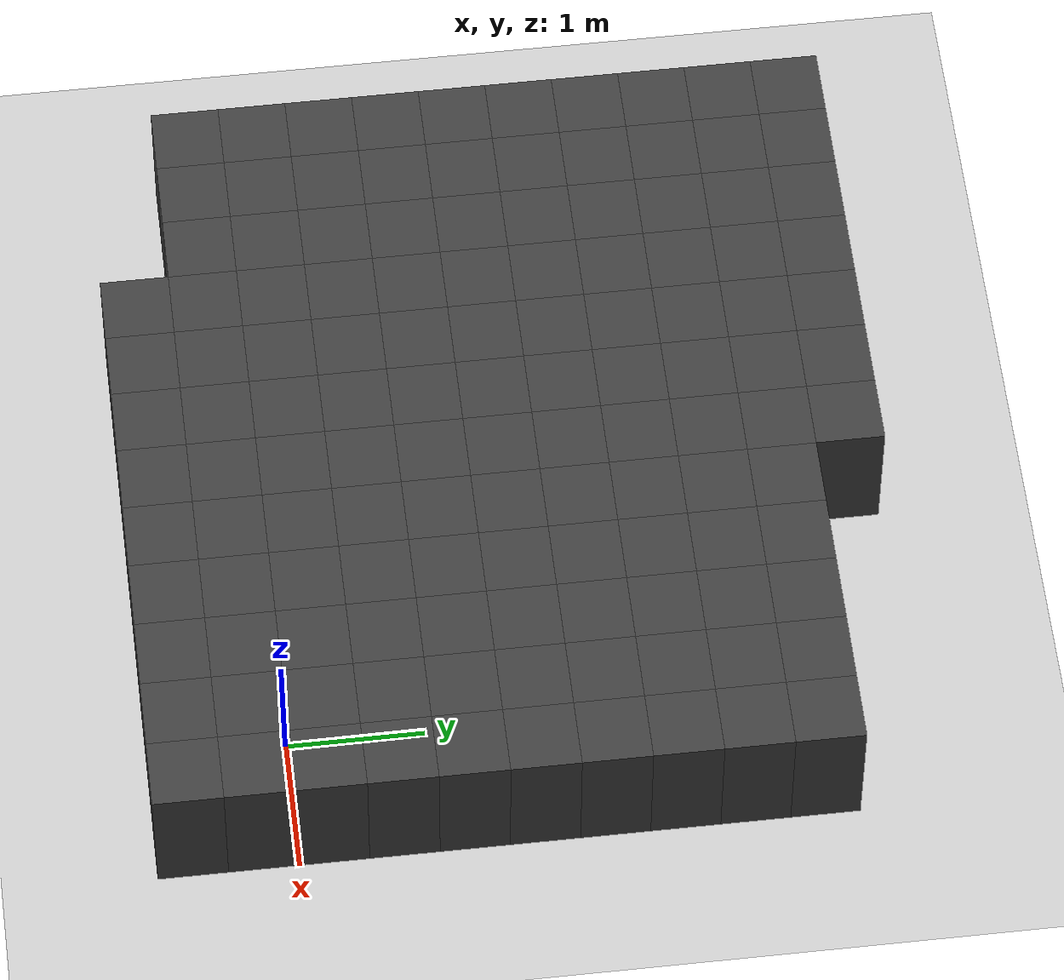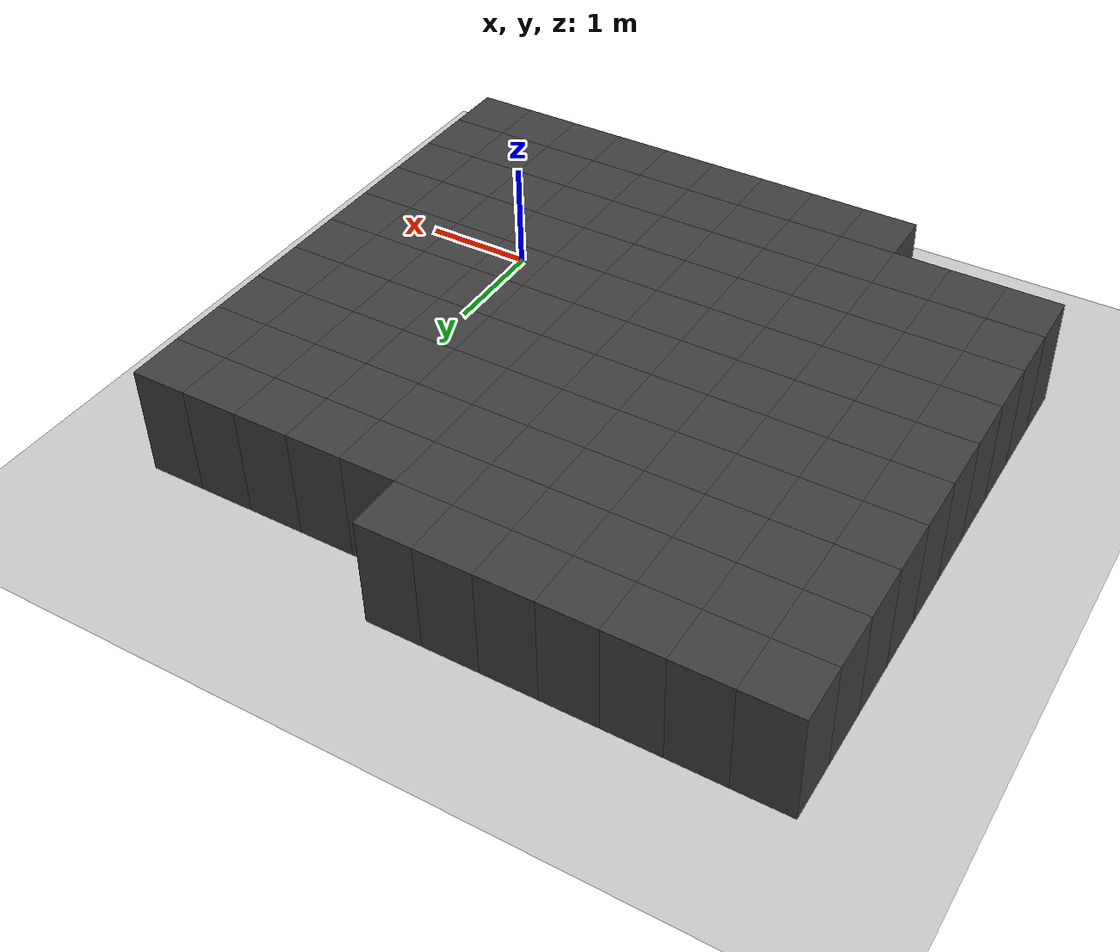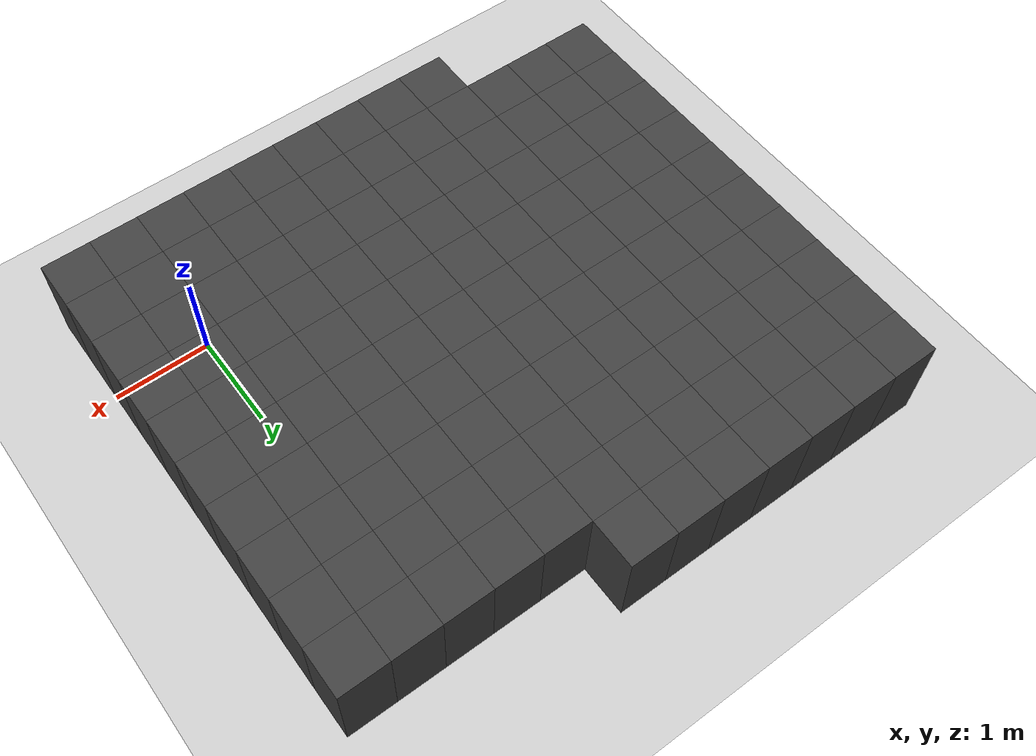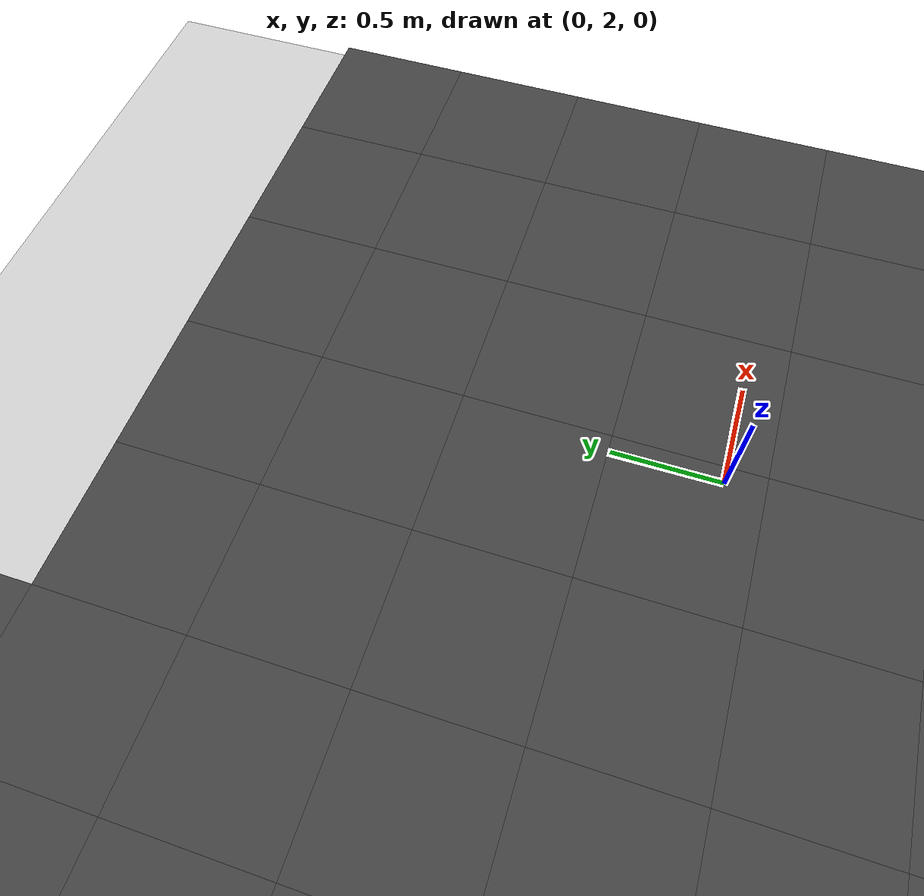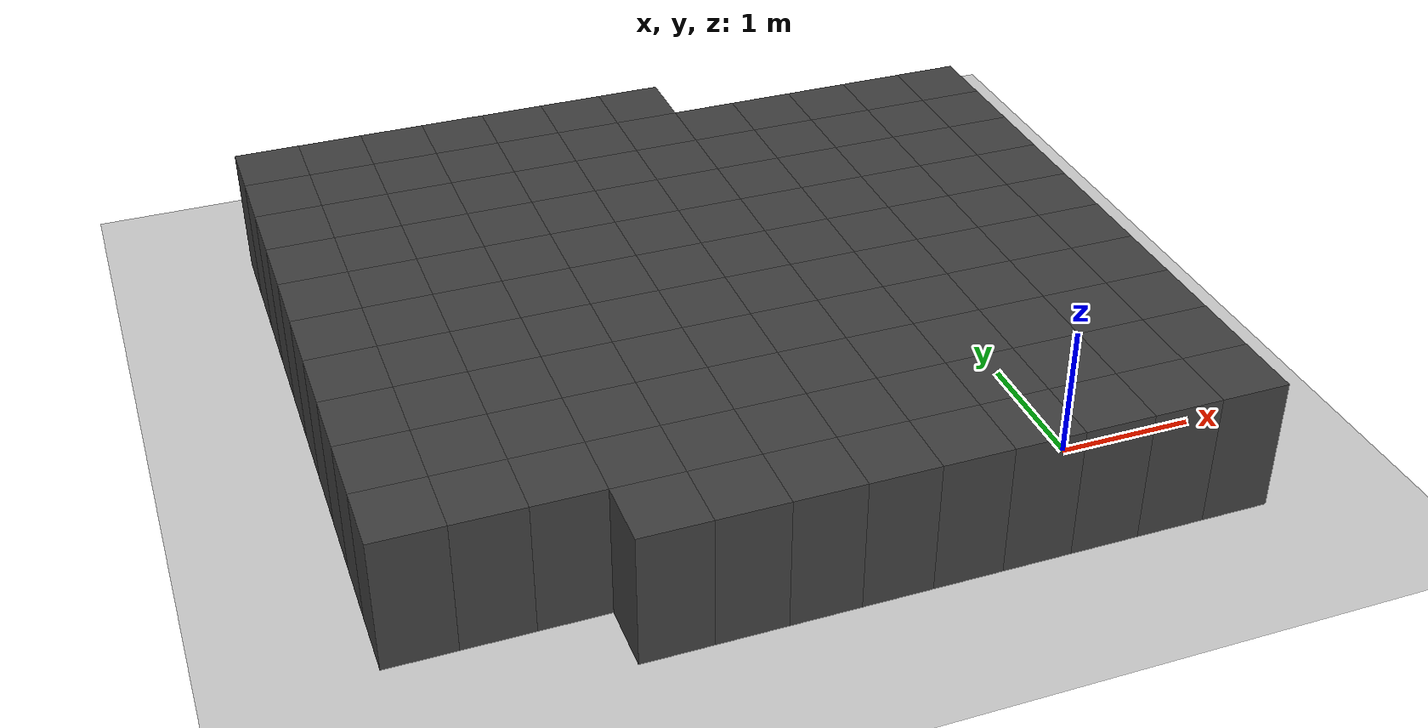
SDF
<sdf version="1.7">
 <world name="map_14668">
  <model name="ground_plane">
   <static>true</static>
   <link name="link">
    <collision name="collision">
     <geometry><plane><normal>0 0 1</normal><size>200 200</size></plane></geometry>
    </collision>
    <visual name="visual">
     <geometry><plane><normal>0 0 1</normal><size>200 200</size></plane></geometry>
     <material><ambient>0.8 0.8 0.8 1</ambient><diffuse>0.8 0.8 0.8 1</diffuse></material>
    </visual>
   </link>
  </model>
  <model name="maze_environment">
   <static>true</static>
   <link name="wall_577">
    <pose>-4.750 4.250 0.500 0 0 0</pose>
    <collision name="col"><geometry><box><size>0.5 0.5 1.0</size></box></geometry></collision>
    <visual name="vis">
     <geometry><box><size>0.5 0.5 1.0</size></box></geometry>
     <material><ambient>0.15 0.15 0.15 1</ambient><diffuse>0.25 0.25 0.25 1</diffuse></material>
    </visual>
   </link>
   <link name="wall_578">
    <pose>-4.250 4.250 0.500 0 0 0</pose>
    <collision name="col"><geometry><box><size>0.5 0.5 1.0</size></box></geometry></collision>
    <visual name="vis">
     <geometry><box><size>0.5 0.5 1.0</size></box></geometry>
     <material><ambient>0.15 0.15 0.15 1</ambient><diffuse>0.25 0.25 0.25 1</diffuse></material>
    </visual>
   </link>
   <link name="wall_579">
    <pose>-3.750 4.250 0.500 0 0 0</pose>
    <collision name="col"><geometry><box><size>0.5 0.5 1.0</size></box></geometry></collision>
    <visual name="vis">
     <geometry><box><size>0.5 0.5 1.0</size></box></geometry>
     <material><ambient>0.15 0.15 0.15 1</ambient><diffuse>0.25 0.25 0.25 1</diffuse></material>
    </visual>
   </link>
   <link name="wall_580">
    <pose>-3.250 4.250 0.500 0 0 0</pose>
    <collision name="col"><geometry><box><size>0.5 0.5 1.0</size></box></geometry></collision>
    <visual name="vis">
     <geometry><box><size>0.5 0.5 1.0</size></box></geometry>
     <material><ambient>0.15 0.15 0.15 1</ambient><diffuse>0.25 0.25 0.25 1</diffuse></material>
    </visual>
   </link>
   <link name="wall_581">
    <pose>-2.750 4.250 0.500 0 0 0</pose>
    <collision name="col"><geometry><box><size>0.5 0.5 1.0</size></box></geometry></collision>
    <visual name="vis">
     <geometry><box><size>0.5 0.5 1.0</size></box></geometry>
     <material><ambient>0.15 0.15 0.15 1</ambient><diffuse>0.25 0.25 0.25 1</diffuse></material>
    </visual>
   </link>
   <link name="wall_582">
    <pose>-2.250 4.250 0.500 0 0 0</pose>
    <collision name="col"><geometry><box><size>0.5 0.5 1.0</size></box></geometry></collision>
    <visual name="vis">
     <geometry><box><size>0.5 0.5 1.0</size></box></geometry>
     <material><ambient>0.15 0.15 0.15 1</ambient><diffuse>0.25 0.25 0.25 1</diffuse></material>
    </visual>
   </link>
   <link name="wall_583">
    <pose>-1.750 4.250 0.500 0 0 0</pose>
    <collision name="col"><geometry><box><size>0.5 0.5 1.0</size></box></geometry></collision>
    <visual name="vis">
     <geometry><box><size>0.5 0.5 1.0</size></box></geometry>
     <material><ambient>0.15 0.15 0.15 1</ambient><diffuse>0.25 0.25 0.25 1</diffuse></material>
    </visual>
   </link>
   <link name="wall_611">
    <pose>-4.750 3.750 0.500 0 0 0</pose>
    <collision name="col"><geometry><box><size>0.5 0.5 1.0</size></box></geometry></collision>
    <visual name="vis">
     <geometry><box><size>0.5 0.5 1.0</size></box></geometry>
     <material><ambient>0.15 0.15 0.15 1</ambient><diffuse>0.25 0.25 0.25 1</diffuse></material>
    </visual>
   </link>
   <link name="wall_612">
    <pose>-4.250 3.750 0.500 0 0 0</pose>
    <collision name="col"><geometry><box><size>0.5 0.5 1.0</size></box></geometry></collision>
    <visual name="vis">
     <geometry><box><size>0.5 0.5 1.0</size></box></geometry>
     <material><ambient>0.15 0.15 0.15 1</ambient><diffuse>0.25 0.25 0.25 1</diffuse></material>
    </visual>
   </link>
   <link name="wall_613">
    <pose>-3.750 3.750 0.500 0 0 0</pose>
    <collision name="col"><geometry><box><size>0.5 0.5 1.0</size></box></geometry></collision>
    <visual name="vis">
     <geometry><box><size>0.5 0.5 1.0</size></box></geometry>
     <material><ambient>0.15 0.15 0.15 1</ambient><diffuse>0.25 0.25 0.25 1</diffuse></material>
    </visual>
   </link>
   <link name="wall_614">
    <pose>-3.250 3.750 0.500 0 0 0</pose>
    <collision name="col"><geometry><box><size>0.5 0.5 1.0</size></box></geometry></collision>
    <visual name="vis">
     <geometry><box><size>0.5 0.5 1.0</size></box></geometry>
     <material><ambient>0.15 0.15 0.15 1</ambient><diffuse>0.25 0.25 0.25 1</diffuse></material>
    </visual>
   </link>
   <link name="wall_615">
    <pose>-2.750 3.750 0.500 0 0 0</pose>
    <collision name="col"><geometry><box><size>0.5 0.5 1.0</size></box></geometry></collision>
    <visual name="vis">
     <geometry><box><size>0.5 0.5 1.0</size></box></geometry>
     <material><ambient>0.15 0.15 0.15 1</ambient><diffuse>0.25 0.25 0.25 1</diffuse></material>
    </visual>
   </link>
   <link name="wall_616">
    <pose>-2.250 3.750 0.500 0 0 0</pose>
    <collision name="col"><geometry><box><size>0.5 0.5 1.0</size></box></geometry></collision>
    <visual name="vis">
     <geometry><box><size>0.5 0.5 1.0</size></box></geometry>
     <material><ambient>0.15 0.15 0.15 1</ambient><diffuse>0.25 0.25 0.25 1</diffuse></material>
    </visual>
   </link>
   <link name="wall_617">
    <pose>-1.750 3.750 0.500 0 0 0</pose>
    <collision name="col"><geometry><box><size>0.5 0.5 1.0</size></box></geometry></collision>
    <visual name="vis">
     <geometry><box><size>0.5 0.5 1.0</size></box></geometry>
     <material><ambient>0.15 0.15 0.15 1</ambient><diffuse>0.25 0.25 0.25 1</diffuse></material>
    </visual>
   </link>
   <link name="wall_618">
    <pose>-1.250 3.750 0.500 0 0 0</pose>
    <collision name="col"><geometry><box><size>0.5 0.5 1.0</size></box></geometry></collision>
    <visual name="vis">
     <geometry><box><size>0.5 0.5 1.0</size></box></geometry>
     <material><ambient>0.15 0.15 0.15 1</ambient><diffuse>0.25 0.25 0.25 1</diffuse></material>
    </visual>
   </link>
   <link name="wall_619">
    <pose>-0.750 3.750 0.500 0 0 0</pose>
    <collision name="col"><geometry><box><size>0.5 0.5 1.0</size></box></geometry></collision>
    <visual name="vis">
     <geometry><box><size>0.5 0.5 1.0</size></box></geometry>
     <material><ambient>0.15 0.15 0.15 1</ambient><diffuse>0.25 0.25 0.25 1</diffuse></material>
    </visual>
   </link>
   <link name="wall_620">
    <pose>-0.250 3.750 0.500 0 0 0</pose>
    <collision name="col"><geometry><box><size>0.5 0.5 1.0</size></box></geometry></collision>
    <visual name="vis">
     <geometry><box><size>0.5 0.5 1.0</size></box></geometry>
     <material><ambient>0.15 0.15 0.15 1</ambient><diffuse>0.25 0.25 0.25 1</diffuse></material>
    </visual>
   </link>
   <link name="wall_621">
    <pose>0.250 3.750 0.500 0 0 0</pose>
    <collision name="col"><geometry><box><size>0.5 0.5 1.0</size></box></geometry></collision>
    <visual name="vis">
     <geometry><box><size>0.5 0.5 1.0</size></box></geometry>
     <material><ambient>0.15 0.15 0.15 1</ambient><diffuse>0.25 0.25 0.25 1</diffuse></material>
    </visual>
   </link>
   <link name="wall_622">
    <pose>0.750 3.750 0.500 0 0 0</pose>
    <collision name="col"><geometry><box><size>0.5 0.5 1.0</size></box></geometry></collision>
    <visual name="vis">
     <geometry><box><size>0.5 0.5 1.0</size></box></geometry>
     <material><ambient>0.15 0.15 0.15 1</ambient><diffuse>0.25 0.25 0.25 1</diffuse></material>
    </visual>
   </link>
   <link name="wall_653">
    <pose>-4.750 3.250 0.500 0 0 0</pose>
    <collision name="col"><geometry><box><size>0.5 0.5 1.0</size></box></geometry></collision>
    <visual name="vis">
     <geometry><box><size>0.5 0.5 1.0</size></box></geometry>
     <material><ambient>0.15 0.15 0.15 1</ambient><diffuse>0.25 0.25 0.25 1</diffuse></material>
    </visual>
   </link>
   <link name="wall_654">
    <pose>-4.250 3.250 0.500 0 0 0</pose>
    <collision name="col"><geometry><box><size>0.5 0.5 1.0</size></box></geometry></collision>
    <visual name="vis">
     <geometry><box><size>0.5 0.5 1.0</size></box></geometry>
     <material><ambient>0.15 0.15 0.15 1</ambient><diffuse>0.25 0.25 0.25 1</diffuse></material>
    </visual>
   </link>
   <link name="wall_655">
    <pose>-3.750 3.250 0.500 0 0 0</pose>
    <collision name="col"><geometry><box><size>0.5 0.5 1.0</size></box></geometry></collision>
    <visual name="vis">
     <geometry><box><size>0.5 0.5 1.0</size></box></geometry>
     <material><ambient>0.15 0.15 0.15 1</ambient><diffuse>0.25 0.25 0.25 1</diffuse></material>
    </visual>
   </link>
   <link name="wall_656">
    <pose>-3.250 3.250 0.500 0 0 0</pose>
    <collision name="col"><geometry><box><size>0.5 0.5 1.0</size></box></geometry></collision>
    <visual name="vis">
     <geometry><box><size>0.5 0.5 1.0</size></box></geometry>
     <material><ambient>0.15 0.15 0.15 1</ambient><diffuse>0.25 0.25 0.25 1</diffuse></material>
    </visual>
   </link>
   <link name="wall_657">
    <pose>-2.750 3.250 0.500 0 0 0</pose>
    <collision name="col"><geometry><box><size>0.5 0.5 1.0</size></box></geometry></collision>
    <visual name="vis">
     <geometry><box><size>0.5 0.5 1.0</size></box></geometry>
     <material><ambient>0.15 0.15 0.15 1</ambient><diffuse>0.25 0.25 0.25 1</diffuse></material>
    </visual>
   </link>
   <link name="wall_658">
    <pose>-2.250 3.250 0.500 0 0 0</pose>
    <collision name="col"><geometry><box><size>0.5 0.5 1.0</size></box></geometry></collision>
    <visual name="vis">
     <geometry><box><size>0.5 0.5 1.0</size></box></geometry>
     <material><ambient>0.15 0.15 0.15 1</ambient><diffuse>0.25 0.25 0.25 1</diffuse></material>
    </visual>
   </link>
   <link name="wall_659">
    <pose>-1.750 3.250 0.500 0 0 0</pose>
    <collision name="col"><geometry><box><size>0.5 0.5 1.0</size></box></geometry></collision>
    <visual name="vis">
     <geometry><box><size>0.5 0.5 1.0</size></box></geometry>
     <material><ambient>0.15 0.15 0.15 1</ambient><diffuse>0.25 0.25 0.25 1</diffuse></material>
    </visual>
   </link>
   <link name="wall_660">
    <pose>-1.250 3.250 0.500 0 0 0</pose>
    <collision name="col"><geometry><box><size>0.5 0.5 1.0</size></box></geometry></collision>
    <visual name="vis">
     <geometry><box><size>0.5 0.5 1.0</size></box></geometry>
     <material><ambient>0.15 0.15 0.15 1</ambient><diffuse>0.25 0.25 0.25 1</diffuse></material>
    </visual>
   </link>
   <link name="wall_661">
    <pose>-0.750 3.250 0.500 0 0 0</pose>
    <collision name="col"><geometry><box><size>0.5 0.5 1.0</size></box></geometry></collision>
    <visual name="vis">
     <geometry><box><size>0.5 0.5 1.0</size></box></geometry>
     <material><ambient>0.15 0.15 0.15 1</ambient><diffuse>0.25 0.25 0.25 1</diffuse></material>
    </visual>
   </link>
   <link name="wall_662">
    <pose>-0.250 3.250 0.500 0 0 0</pose>
    <collision name="col"><geometry><box><size>0.5 0.5 1.0</size></box></geometry></collision>
    <visual name="vis">
     <geometry><box><size>0.5 0.5 1.0</size></box></geometry>
     <material><ambient>0.15 0.15 0.15 1</ambient><diffuse>0.25 0.25 0.25 1</diffuse></material>
    </visual>
   </link>
   <link name="wall_663">
    <pose>0.250 3.250 0.500 0 0 0</pose>
    <collision name="col"><geometry><box><size>0.5 0.5 1.0</size></box></geometry></collision>
    <visual name="vis">
     <geometry><box><size>0.5 0.5 1.0</size></box></geometry>
     <material><ambient>0.15 0.15 0.15 1</ambient><diffuse>0.25 0.25 0.25 1</diffuse></material>
    </visual>
   </link>
   <link name="wall_664">
    <pose>0.750 3.250 0.500 0 0 0</pose>
    <collision name="col"><geometry><box><size>0.5 0.5 1.0</size></box></geometry></collision>
    <visual name="vis">
     <geometry><box><size>0.5 0.5 1.0</size></box></geometry>
     <material><ambient>0.15 0.15 0.15 1</ambient><diffuse>0.25 0.25 0.25 1</diffuse></material>
    </visual>
   </link>
   <link name="wall_689">
    <pose>-4.750 2.750 0.500 0 0 0</pose>
    <collision name="col"><geometry><box><size>0.5 0.5 1.0</size></box></geometry></collision>
    <visual name="vis">
     <geometry><box><size>0.5 0.5 1.0</size></box></geometry>
     <material><ambient>0.15 0.15 0.15 1</ambient><diffuse>0.25 0.25 0.25 1</diffuse></material>
    </visual>
   </link>
   <link name="wall_690">
    <pose>-4.250 2.750 0.500 0 0 0</pose>
    <collision name="col"><geometry><box><size>0.5 0.5 1.0</size></box></geometry></collision>
    <visual name="vis">
     <geometry><box><size>0.5 0.5 1.0</size></box></geometry>
     <material><ambient>0.15 0.15 0.15 1</ambient><diffuse>0.25 0.25 0.25 1</diffuse></material>
    </visual>
   </link>
   <link name="wall_691">
    <pose>-3.750 2.750 0.500 0 0 0</pose>
    <collision name="col"><geometry><box><size>0.5 0.5 1.0</size></box></geometry></collision>
    <visual name="vis">
     <geometry><box><size>0.5 0.5 1.0</size></box></geometry>
     <material><ambient>0.15 0.15 0.15 1</ambient><diffuse>0.25 0.25 0.25 1</diffuse></material>
    </visual>
   </link>
   <link name="wall_692">
    <pose>-3.250 2.750 0.500 0 0 0</pose>
    <collision name="col"><geometry><box><size>0.5 0.5 1.0</size></box></geometry></collision>
    <visual name="vis">
     <geometry><box><size>0.5 0.5 1.0</size></box></geometry>
     <material><ambient>0.15 0.15 0.15 1</ambient><diffuse>0.25 0.25 0.25 1</diffuse></material>
    </visual>
   </link>
   <link name="wall_693">
    <pose>-2.750 2.750 0.500 0 0 0</pose>
    <collision name="col"><geometry><box><size>0.5 0.5 1.0</size></box></geometry></collision>
    <visual name="vis">
     <geometry><box><size>0.5 0.5 1.0</size></box></geometry>
     <material><ambient>0.15 0.15 0.15 1</ambient><diffuse>0.25 0.25 0.25 1</diffuse></material>
    </visual>
   </link>
   <link name="wall_694">
    <pose>-2.250 2.750 0.500 0 0 0</pose>
    <collision name="col"><geometry><box><size>0.5 0.5 1.0</size></box></geometry></collision>
    <visual name="vis">
     <geometry><box><size>0.5 0.5 1.0</size></box></geometry>
     <material><ambient>0.15 0.15 0.15 1</ambient><diffuse>0.25 0.25 0.25 1</diffuse></material>
    </visual>
   </link>
   <link name="wall_695">
    <pose>-1.750 2.750 0.500 0 0 0</pose>
    <collision name="col"><geometry><box><size>0.5 0.5 1.0</size></box></geometry></collision>
    <visual name="vis">
     <geometry><box><size>0.5 0.5 1.0</size></box></geometry>
     <material><ambient>0.15 0.15 0.15 1</ambient><diffuse>0.25 0.25 0.25 1</diffuse></material>
    </visual>
   </link>
   <link name="wall_696">
    <pose>-1.250 2.750 0.500 0 0 0</pose>
    <collision name="col"><geometry><box><size>0.5 0.5 1.0</size></box></geometry></collision>
    <visual name="vis">
     <geometry><box><size>0.5 0.5 1.0</size></box></geometry>
     <material><ambient>0.15 0.15 0.15 1</ambient><diffuse>0.25 0.25 0.25 1</diffuse></material>
    </visual>
   </link>
   <link name="wall_697">
    <pose>-0.750 2.750 0.500 0 0 0</pose>
    <collision name="col"><geometry><box><size>0.5 0.5 1.0</size></box></geometry></collision>
    <visual name="vis">
     <geometry><box><size>0.5 0.5 1.0</size></box></geometry>
     <material><ambient>0.15 0.15 0.15 1</ambient><diffuse>0.25 0.25 0.25 1</diffuse></material>
    </visual>
   </link>
   <link name="wall_698">
    <pose>-0.250 2.750 0.500 0 0 0</pose>
    <collision name="col"><geometry><box><size>0.5 0.5 1.0</size></box></geometry></collision>
    <visual name="vis">
     <geometry><box><size>0.5 0.5 1.0</size></box></geometry>
     <material><ambient>0.15 0.15 0.15 1</ambient><diffuse>0.25 0.25 0.25 1</diffuse></material>
    </visual>
   </link>
   <link name="wall_699">
    <pose>0.250 2.750 0.500 0 0 0</pose>
    <collision name="col"><geometry><box><size>0.5 0.5 1.0</size></box></geometry></collision>
    <visual name="vis">
     <geometry><box><size>0.5 0.5 1.0</size></box></geometry>
     <material><ambient>0.15 0.15 0.15 1</ambient><diffuse>0.25 0.25 0.25 1</diffuse></material>
    </visual>
   </link>
   <link name="wall_700">
    <pose>0.750 2.750 0.500 0 0 0</pose>
    <collision name="col"><geometry><box><size>0.5 0.5 1.0</size></box></geometry></collision>
    <visual name="vis">
     <geometry><box><size>0.5 0.5 1.0</size></box></geometry>
     <material><ambient>0.15 0.15 0.15 1</ambient><diffuse>0.25 0.25 0.25 1</diffuse></material>
    </visual>
   </link>
   <link name="wall_732">
    <pose>-4.750 2.250 0.500 0 0 0</pose>
    <collision name="col"><geometry><box><size>0.5 0.5 1.0</size></box></geometry></collision>
    <visual name="vis">
     <geometry><box><size>0.5 0.5 1.0</size></box></geometry>
     <material><ambient>0.15 0.15 0.15 1</ambient><diffuse>0.25 0.25 0.25 1</diffuse></material>
    </visual>
   </link>
   <link name="wall_733">
    <pose>-4.250 2.250 0.500 0 0 0</pose>
    <collision name="col"><geometry><box><size>0.5 0.5 1.0</size></box></geometry></collision>
    <visual name="vis">
     <geometry><box><size>0.5 0.5 1.0</size></box></geometry>
     <material><ambient>0.15 0.15 0.15 1</ambient><diffuse>0.25 0.25 0.25 1</diffuse></material>
    </visual>
   </link>
   <link name="wall_734">
    <pose>-3.750 2.250 0.500 0 0 0</pose>
    <collision name="col"><geometry><box><size>0.5 0.5 1.0</size></box></geometry></collision>
    <visual name="vis">
     <geometry><box><size>0.5 0.5 1.0</size></box></geometry>
     <material><ambient>0.15 0.15 0.15 1</ambient><diffuse>0.25 0.25 0.25 1</diffuse></material>
    </visual>
   </link>
   <link name="wall_735">
    <pose>-3.250 2.250 0.500 0 0 0</pose>
    <collision name="col"><geometry><box><size>0.5 0.5 1.0</size></box></geometry></collision>
    <visual name="vis">
     <geometry><box><size>0.5 0.5 1.0</size></box></geometry>
     <material><ambient>0.15 0.15 0.15 1</ambient><diffuse>0.25 0.25 0.25 1</diffuse></material>
    </visual>
   </link>
   <link name="wall_736">
    <pose>-2.750 2.250 0.500 0 0 0</pose>
    <collision name="col"><geometry><box><size>0.5 0.5 1.0</size></box></geometry></collision>
    <visual name="vis">
     <geometry><box><size>0.5 0.5 1.0</size></box></geometry>
     <material><ambient>0.15 0.15 0.15 1</ambient><diffuse>0.25 0.25 0.25 1</diffuse></material>
    </visual>
   </link>
   <link name="wall_737">
    <pose>-2.250 2.250 0.500 0 0 0</pose>
    <collision name="col"><geometry><box><size>0.5 0.5 1.0</size></box></geometry></collision>
    <visual name="vis">
     <geometry><box><size>0.5 0.5 1.0</size></box></geometry>
     <material><ambient>0.15 0.15 0.15 1</ambient><diffuse>0.25 0.25 0.25 1</diffuse></material>
    </visual>
   </link>
   <link name="wall_738">
    <pose>-1.750 2.250 0.500 0 0 0</pose>
    <collision name="col"><geometry><box><size>0.5 0.5 1.0</size></box></geometry></collision>
    <visual name="vis">
     <geometry><box><size>0.5 0.5 1.0</size></box></geometry>
     <material><ambient>0.15 0.15 0.15 1</ambient><diffuse>0.25 0.25 0.25 1</diffuse></material>
    </visual>
   </link>
   <link name="wall_739">
    <pose>-1.250 2.250 0.500 0 0 0</pose>
    <collision name="col"><geometry><box><size>0.5 0.5 1.0</size></box></geometry></collision>
    <visual name="vis">
     <geometry><box><size>0.5 0.5 1.0</size></box></geometry>
     <material><ambient>0.15 0.15 0.15 1</ambient><diffuse>0.25 0.25 0.25 1</diffuse></material>
    </visual>
   </link>
   <link name="wall_740">
    <pose>-0.750 2.250 0.500 0 0 0</pose>
    <collision name="col"><geometry><box><size>0.5 0.5 1.0</size></box></geometry></collision>
    <visual name="vis">
     <geometry><box><size>0.5 0.5 1.0</size></box></geometry>
     <material><ambient>0.15 0.15 0.15 1</ambient><diffuse>0.25 0.25 0.25 1</diffuse></material>
    </visual>
   </link>
   <link name="wall_741">
    <pose>-0.250 2.250 0.500 0 0 0</pose>
    <collision name="col"><geometry><box><size>0.5 0.5 1.0</size></box></geometry></collision>
    <visual name="vis">
     <geometry><box><size>0.5 0.5 1.0</size></box></geometry>
     <material><ambient>0.15 0.15 0.15 1</ambient><diffuse>0.25 0.25 0.25 1</diffuse></material>
    </visual>
   </link>
   <link name="wall_742">
    <pose>0.250 2.250 0.500 0 0 0</pose>
    <collision name="col"><geometry><box><size>0.5 0.5 1.0</size></box></geometry></collision>
    <visual name="vis">
     <geometry><box><size>0.5 0.5 1.0</size></box></geometry>
     <material><ambient>0.15 0.15 0.15 1</ambient><diffuse>0.25 0.25 0.25 1</diffuse></material>
    </visual>
   </link>
   <link name="wall_743">
    <pose>0.750 2.250 0.500 0 0 0</pose>
    <collision name="col"><geometry><box><size>0.5 0.5 1.0</size></box></geometry></collision>
    <visual name="vis">
     <geometry><box><size>0.5 0.5 1.0</size></box></geometry>
     <material><ambient>0.15 0.15 0.15 1</ambient><diffuse>0.25 0.25 0.25 1</diffuse></material>
    </visual>
   </link>
   <link name="wall_775">
    <pose>-4.750 1.750 0.500 0 0 0</pose>
    <collision name="col"><geometry><box><size>0.5 0.5 1.0</size></box></geometry></collision>
    <visual name="vis">
     <geometry><box><size>0.5 0.5 1.0</size></box></geometry>
     <material><ambient>0.15 0.15 0.15 1</ambient><diffuse>0.25 0.25 0.25 1</diffuse></material>
    </visual>
   </link>
   <link name="wall_776">
    <pose>-4.250 1.750 0.500 0 0 0</pose>
    <collision name="col"><geometry><box><size>0.5 0.5 1.0</size></box></geometry></collision>
    <visual name="vis">
     <geometry><box><size>0.5 0.5 1.0</size></box></geometry>
     <material><ambient>0.15 0.15 0.15 1</ambient><diffuse>0.25 0.25 0.25 1</diffuse></material>
    </visual>
   </link>
   <link name="wall_777">
    <pose>-3.750 1.750 0.500 0 0 0</pose>
    <collision name="col"><geometry><box><size>0.5 0.5 1.0</size></box></geometry></collision>
    <visual name="vis">
     <geometry><box><size>0.5 0.5 1.0</size></box></geometry>
     <material><ambient>0.15 0.15 0.15 1</ambient><diffuse>0.25 0.25 0.25 1</diffuse></material>
    </visual>
   </link>
   <link name="wall_778">
    <pose>-3.250 1.750 0.500 0 0 0</pose>
    <collision name="col"><geometry><box><size>0.5 0.5 1.0</size></box></geometry></collision>
    <visual name="vis">
     <geometry><box><size>0.5 0.5 1.0</size></box></geometry>
     <material><ambient>0.15 0.15 0.15 1</ambient><diffuse>0.25 0.25 0.25 1</diffuse></material>
    </visual>
   </link>
   <link name="wall_779">
    <pose>-2.750 1.750 0.500 0 0 0</pose>
    <collision name="col"><geometry><box><size>0.5 0.5 1.0</size></box></geometry></collision>
    <visual name="vis">
     <geometry><box><size>0.5 0.5 1.0</size></box></geometry>
     <material><ambient>0.15 0.15 0.15 1</ambient><diffuse>0.25 0.25 0.25 1</diffuse></material>
    </visual>
   </link>
   <link name="wall_780">
    <pose>-2.250 1.750 0.500 0 0 0</pose>
    <collision name="col"><geometry><box><size>0.5 0.5 1.0</size></box></geometry></collision>
    <visual name="vis">
     <geometry><box><size>0.5 0.5 1.0</size></box></geometry>
     <material><ambient>0.15 0.15 0.15 1</ambient><diffuse>0.25 0.25 0.25 1</diffuse></material>
    </visual>
   </link>
   <link name="wall_781">
    <pose>-1.750 1.750 0.500 0 0 0</pose>
    <collision name="col"><geometry><box><size>0.5 0.5 1.0</size></box></geometry></collision>
    <visual name="vis">
     <geometry><box><size>0.5 0.5 1.0</size></box></geometry>
     <material><ambient>0.15 0.15 0.15 1</ambient><diffuse>0.25 0.25 0.25 1</diffuse></material>
    </visual>
   </link>
   <link name="wall_782">
    <pose>-1.250 1.750 0.500 0 0 0</pose>
    <collision name="col"><geometry><box><size>0.5 0.5 1.0</size></box></geometry></collision>
    <visual name="vis">
     <geometry><box><size>0.5 0.5 1.0</size></box></geometry>
     <material><ambient>0.15 0.15 0.15 1</ambient><diffuse>0.25 0.25 0.25 1</diffuse></material>
    </visual>
   </link>
   <link name="wall_783">
    <pose>-0.750 1.750 0.500 0 0 0</pose>
    <collision name="col"><geometry><box><size>0.5 0.5 1.0</size></box></geometry></collision>
    <visual name="vis">
     <geometry><box><size>0.5 0.5 1.0</size></box></geometry>
     <material><ambient>0.15 0.15 0.15 1</ambient><diffuse>0.25 0.25 0.25 1</diffuse></material>
    </visual>
   </link>
   <link name="wall_784">
    <pose>-0.250 1.750 0.500 0 0 0</pose>
    <collision name="col"><geometry><box><size>0.5 0.5 1.0</size></box></geometry></collision>
    <visual name="vis">
     <geometry><box><size>0.5 0.5 1.0</size></box></geometry>
     <material><ambient>0.15 0.15 0.15 1</ambient><diffuse>0.25 0.25 0.25 1</diffuse></material>
    </visual>
   </link>
   <link name="wall_785">
    <pose>0.250 1.750 0.500 0 0 0</pose>
    <collision name="col"><geometry><box><size>0.5 0.5 1.0</size></box></geometry></collision>
    <visual name="vis">
     <geometry><box><size>0.5 0.5 1.0</size></box></geometry>
     <material><ambient>0.15 0.15 0.15 1</ambient><diffuse>0.25 0.25 0.25 1</diffuse></material>
    </visual>
   </link>
   <link name="wall_786">
    <pose>0.750 1.750 0.500 0 0 0</pose>
    <collision name="col"><geometry><box><size>0.5 0.5 1.0</size></box></geometry></collision>
    <visual name="vis">
     <geometry><box><size>0.5 0.5 1.0</size></box></geometry>
     <material><ambient>0.15 0.15 0.15 1</ambient><diffuse>0.25 0.25 0.25 1</diffuse></material>
    </visual>
   </link>
   <link name="wall_818">
    <pose>-4.750 1.250 0.500 0 0 0</pose>
    <collision name="col"><geometry><box><size>0.5 0.5 1.0</size></box></geometry></collision>
    <visual name="vis">
     <geometry><box><size>0.5 0.5 1.0</size></box></geometry>
     <material><ambient>0.15 0.15 0.15 1</ambient><diffuse>0.25 0.25 0.25 1</diffuse></material>
    </visual>
   </link>
   <link name="wall_819">
    <pose>-4.250 1.250 0.500 0 0 0</pose>
    <collision name="col"><geometry><box><size>0.5 0.5 1.0</size></box></geometry></collision>
    <visual name="vis">
     <geometry><box><size>0.5 0.5 1.0</size></box></geometry>
     <material><ambient>0.15 0.15 0.15 1</ambient><diffuse>0.25 0.25 0.25 1</diffuse></material>
    </visual>
   </link>
   <link name="wall_820">
    <pose>-3.750 1.250 0.500 0 0 0</pose>
    <collision name="col"><geometry><box><size>0.5 0.5 1.0</size></box></geometry></collision>
    <visual name="vis">
     <geometry><box><size>0.5 0.5 1.0</size></box></geometry>
     <material><ambient>0.15 0.15 0.15 1</ambient><diffuse>0.25 0.25 0.25 1</diffuse></material>
    </visual>
   </link>
   <link name="wall_821">
    <pose>-3.250 1.250 0.500 0 0 0</pose>
    <collision name="col"><geometry><box><size>0.5 0.5 1.0</size></box></geometry></collision>
    <visual name="vis">
     <geometry><box><size>0.5 0.5 1.0</size></box></geometry>
     <material><ambient>0.15 0.15 0.15 1</ambient><diffuse>0.25 0.25 0.25 1</diffuse></material>
    </visual>
   </link>
   <link name="wall_822">
    <pose>-2.750 1.250 0.500 0 0 0</pose>
    <collision name="col"><geometry><box><size>0.5 0.5 1.0</size></box></geometry></collision>
    <visual name="vis">
     <geometry><box><size>0.5 0.5 1.0</size></box></geometry>
     <material><ambient>0.15 0.15 0.15 1</ambient><diffuse>0.25 0.25 0.25 1</diffuse></material>
    </visual>
   </link>
   <link name="wall_823">
    <pose>-2.250 1.250 0.500 0 0 0</pose>
    <collision name="col"><geometry><box><size>0.5 0.5 1.0</size></box></geometry></collision>
    <visual name="vis">
     <geometry><box><size>0.5 0.5 1.0</size></box></geometry>
     <material><ambient>0.15 0.15 0.15 1</ambient><diffuse>0.25 0.25 0.25 1</diffuse></material>
    </visual>
   </link>
   <link name="wall_824">
    <pose>-1.750 1.250 0.500 0 0 0</pose>
    <collision name="col"><geometry><box><size>0.5 0.5 1.0</size></box></geometry></collision>
    <visual name="vis">
     <geometry><box><size>0.5 0.5 1.0</size></box></geometry>
     <material><ambient>0.15 0.15 0.15 1</ambient><diffuse>0.25 0.25 0.25 1</diffuse></material>
    </visual>
   </link>
   <link name="wall_825">
    <pose>-1.250 1.250 0.500 0 0 0</pose>
    <collision name="col"><geometry><box><size>0.5 0.5 1.0</size></box></geometry></collision>
    <visual name="vis">
     <geometry><box><size>0.5 0.5 1.0</size></box></geometry>
     <material><ambient>0.15 0.15 0.15 1</ambient><diffuse>0.25 0.25 0.25 1</diffuse></material>
    </visual>
   </link>
   <link name="wall_826">
    <pose>-0.750 1.250 0.500 0 0 0</pose>
    <collision name="col"><geometry><box><size>0.5 0.5 1.0</size></box></geometry></collision>
    <visual name="vis">
     <geometry><box><size>0.5 0.5 1.0</size></box></geometry>
     <material><ambient>0.15 0.15 0.15 1</ambient><diffuse>0.25 0.25 0.25 1</diffuse></material>
    </visual>
   </link>
   <link name="wall_827">
    <pose>-0.250 1.250 0.500 0 0 0</pose>
    <collision name="col"><geometry><box><size>0.5 0.5 1.0</size></box></geometry></collision>
    <visual name="vis">
     <geometry><box><size>0.5 0.5 1.0</size></box></geometry>
     <material><ambient>0.15 0.15 0.15 1</ambient><diffuse>0.25 0.25 0.25 1</diffuse></material>
    </visual>
   </link>
   <link name="wall_828">
    <pose>0.250 1.250 0.500 0 0 0</pose>
    <collision name="col"><geometry><box><size>0.5 0.5 1.0</size></box></geometry></collision>
    <visual name="vis">
     <geometry><box><size>0.5 0.5 1.0</size></box></geometry>
     <material><ambient>0.15 0.15 0.15 1</ambient><diffuse>0.25 0.25 0.25 1</diffuse></material>
    </visual>
   </link>
   <link name="wall_829">
    <pose>0.750 1.250 0.500 0 0 0</pose>
    <collision name="col"><geometry><box><size>0.5 0.5 1.0</size></box></geometry></collision>
    <visual name="vis">
     <geometry><box><size>0.5 0.5 1.0</size></box></geometry>
     <material><ambient>0.15 0.15 0.15 1</ambient><diffuse>0.25 0.25 0.25 1</diffuse></material>
    </visual>
   </link>
   <link name="wall_867">
    <pose>-4.750 0.750 0.500 0 0 0</pose>
    <collision name="col"><geometry><box><size>0.5 0.5 1.0</size></box></geometry></collision>
    <visual name="vis">
     <geometry><box><size>0.5 0.5 1.0</size></box></geometry>
     <material><ambient>0.15 0.15 0.15 1</ambient><diffuse>0.25 0.25 0.25 1</diffuse></material>
    </visual>
   </link>
   <link name="wall_868">
    <pose>-4.250 0.750 0.500 0 0 0</pose>
    <collision name="col"><geometry><box><size>0.5 0.5 1.0</size></box></geometry></collision>
    <visual name="vis">
     <geometry><box><size>0.5 0.5 1.0</size></box></geometry>
     <material><ambient>0.15 0.15 0.15 1</ambient><diffuse>0.25 0.25 0.25 1</diffuse></material>
    </visual>
   </link>
   <link name="wall_869">
    <pose>-3.750 0.750 0.500 0 0 0</pose>
    <collision name="col"><geometry><box><size>0.5 0.5 1.0</size></box></geometry></collision>
    <visual name="vis">
     <geometry><box><size>0.5 0.5 1.0</size></box></geometry>
     <material><ambient>0.15 0.15 0.15 1</ambient><diffuse>0.25 0.25 0.25 1</diffuse></material>
    </visual>
   </link>
   <link name="wall_870">
    <pose>-3.250 0.750 0.500 0 0 0</pose>
    <collision name="col"><geometry><box><size>0.5 0.5 1.0</size></box></geometry></collision>
    <visual name="vis">
     <geometry><box><size>0.5 0.5 1.0</size></box></geometry>
     <material><ambient>0.15 0.15 0.15 1</ambient><diffuse>0.25 0.25 0.25 1</diffuse></material>
    </visual>
   </link>
   <link name="wall_871">
    <pose>-2.750 0.750 0.500 0 0 0</pose>
    <collision name="col"><geometry><box><size>0.5 0.5 1.0</size></box></geometry></collision>
    <visual name="vis">
     <geometry><box><size>0.5 0.5 1.0</size></box></geometry>
     <material><ambient>0.15 0.15 0.15 1</ambient><diffuse>0.25 0.25 0.25 1</diffuse></material>
    </visual>
   </link>
   <link name="wall_872">
    <pose>-2.250 0.750 0.500 0 0 0</pose>
    <collision name="col"><geometry><box><size>0.5 0.5 1.0</size></box></geometry></collision>
    <visual name="vis">
     <geometry><box><size>0.5 0.5 1.0</size></box></geometry>
     <material><ambient>0.15 0.15 0.15 1</ambient><diffuse>0.25 0.25 0.25 1</diffuse></material>
    </visual>
   </link>
   <link name="wall_873">
    <pose>-1.750 0.750 0.500 0 0 0</pose>
    <collision name="col"><geometry><box><size>0.5 0.5 1.0</size></box></geometry></collision>
    <visual name="vis">
     <geometry><box><size>0.5 0.5 1.0</size></box></geometry>
     <material><ambient>0.15 0.15 0.15 1</ambient><diffuse>0.25 0.25 0.25 1</diffuse></material>
    </visual>
   </link>
   <link name="wall_874">
    <pose>-1.250 0.750 0.500 0 0 0</pose>
    <collision name="col"><geometry><box><size>0.5 0.5 1.0</size></box></geometry></collision>
    <visual name="vis">
     <geometry><box><size>0.5 0.5 1.0</size></box></geometry>
     <material><ambient>0.15 0.15 0.15 1</ambient><diffuse>0.25 0.25 0.25 1</diffuse></material>
    </visual>
   </link>
   <link name="wall_875">
    <pose>-0.750 0.750 0.500 0 0 0</pose>
    <collision name="col"><geometry><box><size>0.5 0.5 1.0</size></box></geometry></collision>
    <visual name="vis">
     <geometry><box><size>0.5 0.5 1.0</size></box></geometry>
     <material><ambient>0.15 0.15 0.15 1</ambient><diffuse>0.25 0.25 0.25 1</diffuse></material>
    </visual>
   </link>
   <link name="wall_876">
    <pose>-0.250 0.750 0.500 0 0 0</pose>
    <collision name="col"><geometry><box><size>0.5 0.5 1.0</size></box></geometry></collision>
    <visual name="vis">
     <geometry><box><size>0.5 0.5 1.0</size></box></geometry>
     <material><ambient>0.15 0.15 0.15 1</ambient><diffuse>0.25 0.25 0.25 1</diffuse></material>
    </visual>
   </link>
   <link name="wall_877">
    <pose>0.250 0.750 0.500 0 0 0</pose>
    <collision name="col"><geometry><box><size>0.5 0.5 1.0</size></box></geometry></collision>
    <visual name="vis">
     <geometry><box><size>0.5 0.5 1.0</size></box></geometry>
     <material><ambient>0.15 0.15 0.15 1</ambient><diffuse>0.25 0.25 0.25 1</diffuse></material>
    </visual>
   </link>
   <link name="wall_878">
    <pose>0.750 0.750 0.500 0 0 0</pose>
    <collision name="col"><geometry><box><size>0.5 0.5 1.0</size></box></geometry></collision>
    <visual name="vis">
     <geometry><box><size>0.5 0.5 1.0</size></box></geometry>
     <material><ambient>0.15 0.15 0.15 1</ambient><diffuse>0.25 0.25 0.25 1</diffuse></material>
    </visual>
   </link>
   <link name="wall_916">
    <pose>-4.750 0.250 0.500 0 0 0</pose>
    <collision name="col"><geometry><box><size>0.5 0.5 1.0</size></box></geometry></collision>
    <visual name="vis">
     <geometry><box><size>0.5 0.5 1.0</size></box></geometry>
     <material><ambient>0.15 0.15 0.15 1</ambient><diffuse>0.25 0.25 0.25 1</diffuse></material>
    </visual>
   </link>
   <link name="wall_917">
    <pose>-4.250 0.250 0.500 0 0 0</pose>
    <collision name="col"><geometry><box><size>0.5 0.5 1.0</size></box></geometry></collision>
    <visual name="vis">
     <geometry><box><size>0.5 0.5 1.0</size></box></geometry>
     <material><ambient>0.15 0.15 0.15 1</ambient><diffuse>0.25 0.25 0.25 1</diffuse></material>
    </visual>
   </link>
   <link name="wall_918">
    <pose>-3.750 0.250 0.500 0 0 0</pose>
    <collision name="col"><geometry><box><size>0.5 0.5 1.0</size></box></geometry></collision>
    <visual name="vis">
     <geometry><box><size>0.5 0.5 1.0</size></box></geometry>
     <material><ambient>0.15 0.15 0.15 1</ambient><diffuse>0.25 0.25 0.25 1</diffuse></material>
    </visual>
   </link>
   <link name="wall_919">
    <pose>-3.250 0.250 0.500 0 0 0</pose>
    <collision name="col"><geometry><box><size>0.5 0.5 1.0</size></box></geometry></collision>
    <visual name="vis">
     <geometry><box><size>0.5 0.5 1.0</size></box></geometry>
     <material><ambient>0.15 0.15 0.15 1</ambient><diffuse>0.25 0.25 0.25 1</diffuse></material>
    </visual>
   </link>
   <link name="wall_920">
    <pose>-2.750 0.250 0.500 0 0 0</pose>
    <collision name="col"><geometry><box><size>0.5 0.5 1.0</size></box></geometry></collision>
    <visual name="vis">
     <geometry><box><size>0.5 0.5 1.0</size></box></geometry>
     <material><ambient>0.15 0.15 0.15 1</ambient><diffuse>0.25 0.25 0.25 1</diffuse></material>
    </visual>
   </link>
   <link name="wall_921">
    <pose>-2.250 0.250 0.500 0 0 0</pose>
    <collision name="col"><geometry><box><size>0.5 0.5 1.0</size></box></geometry></collision>
    <visual name="vis">
     <geometry><box><size>0.5 0.5 1.0</size></box></geometry>
     <material><ambient>0.15 0.15 0.15 1</ambient><diffuse>0.25 0.25 0.25 1</diffuse></material>
    </visual>
   </link>
   <link name="wall_922">
    <pose>-1.750 0.250 0.500 0 0 0</pose>
    <collision name="col"><geometry><box><size>0.5 0.5 1.0</size></box></geometry></collision>
    <visual name="vis">
     <geometry><box><size>0.5 0.5 1.0</size></box></geometry>
     <material><ambient>0.15 0.15 0.15 1</ambient><diffuse>0.25 0.25 0.25 1</diffuse></material>
    </visual>
   </link>
   <link name="wall_923">
    <pose>-1.250 0.250 0.500 0 0 0</pose>
    <collision name="col"><geometry><box><size>0.5 0.5 1.0</size></box></geometry></collision>
    <visual name="vis">
     <geometry><box><size>0.5 0.5 1.0</size></box></geometry>
     <material><ambient>0.15 0.15 0.15 1</ambient><diffuse>0.25 0.25 0.25 1</diffuse></material>
    </visual>
   </link>
   <link name="wall_924">
    <pose>-0.750 0.250 0.500 0 0 0</pose>
    <collision name="col"><geometry><box><size>0.5 0.5 1.0</size></box></geometry></collision>
    <visual name="vis">
     <geometry><box><size>0.5 0.5 1.0</size></box></geometry>
     <material><ambient>0.15 0.15 0.15 1</ambient><diffuse>0.25 0.25 0.25 1</diffuse></material>
    </visual>
   </link>
   <link name="wall_925">
    <pose>-0.250 0.250 0.500 0 0 0</pose>
    <collision name="col"><geometry><box><size>0.5 0.5 1.0</size></box></geometry></collision>
    <visual name="vis">
     <geometry><box><size>0.5 0.5 1.0</size></box></geometry>
     <material><ambient>0.15 0.15 0.15 1</ambient><diffuse>0.25 0.25 0.25 1</diffuse></material>
    </visual>
   </link>
   <link name="wall_926">
    <pose>0.250 0.250 0.500 0 0 0</pose>
    <collision name="col"><geometry><box><size>0.5 0.5 1.0</size></box></geometry></collision>
    <visual name="vis">
     <geometry><box><size>0.5 0.5 1.0</size></box></geometry>
     <material><ambient>0.15 0.15 0.15 1</ambient><diffuse>0.25 0.25 0.25 1</diffuse></material>
    </visual>
   </link>
   <link name="wall_927">
    <pose>0.750 0.250 0.500 0 0 0</pose>
    <collision name="col"><geometry><box><size>0.5 0.5 1.0</size></box></geometry></collision>
    <visual name="vis">
     <geometry><box><size>0.5 0.5 1.0</size></box></geometry>
     <material><ambient>0.15 0.15 0.15 1</ambient><diffuse>0.25 0.25 0.25 1</diffuse></material>
    </visual>
   </link>
   <link name="wall_965">
    <pose>-4.750 -0.250 0.500 0 0 0</pose>
    <collision name="col"><geometry><box><size>0.5 0.5 1.0</size></box></geometry></collision>
    <visual name="vis">
     <geometry><box><size>0.5 0.5 1.0</size></box></geometry>
     <material><ambient>0.15 0.15 0.15 1</ambient><diffuse>0.25 0.25 0.25 1</diffuse></material>
    </visual>
   </link>
   <link name="wall_966">
    <pose>-4.250 -0.250 0.500 0 0 0</pose>
    <collision name="col"><geometry><box><size>0.5 0.5 1.0</size></box></geometry></collision>
    <visual name="vis">
     <geometry><box><size>0.5 0.5 1.0</size></box></geometry>
     <material><ambient>0.15 0.15 0.15 1</ambient><diffuse>0.25 0.25 0.25 1</diffuse></material>
    </visual>
   </link>
   <link name="wall_967">
    <pose>-3.750 -0.250 0.500 0 0 0</pose>
    <collision name="col"><geometry><box><size>0.5 0.5 1.0</size></box></geometry></collision>
    <visual name="vis">
     <geometry><box><size>0.5 0.5 1.0</size></box></geometry>
     <material><ambient>0.15 0.15 0.15 1</ambient><diffuse>0.25 0.25 0.25 1</diffuse></material>
    </visual>
   </link>
   <link name="wall_968">
    <pose>-3.250 -0.250 0.500 0 0 0</pose>
    <collision name="col"><geometry><box><size>0.5 0.5 1.0</size></box></geometry></collision>
    <visual name="vis">
     <geometry><box><size>0.5 0.5 1.0</size></box></geometry>
     <material><ambient>0.15 0.15 0.15 1</ambient><diffuse>0.25 0.25 0.25 1</diffuse></material>
    </visual>
   </link>
   <link name="wall_969">
    <pose>-2.750 -0.250 0.500 0 0 0</pose>
    <collision name="col"><geometry><box><size>0.5 0.5 1.0</size></box></geometry></collision>
    <visual name="vis">
     <geometry><box><size>0.5 0.5 1.0</size></box></geometry>
     <material><ambient>0.15 0.15 0.15 1</ambient><diffuse>0.25 0.25 0.25 1</diffuse></material>
    </visual>
   </link>
   <link name="wall_970">
    <pose>-2.250 -0.250 0.500 0 0 0</pose>
    <collision name="col"><geometry><box><size>0.5 0.5 1.0</size></box></geometry></collision>
    <visual name="vis">
     <geometry><box><size>0.5 0.5 1.0</size></box></geometry>
     <material><ambient>0.15 0.15 0.15 1</ambient><diffuse>0.25 0.25 0.25 1</diffuse></material>
    </visual>
   </link>
   <link name="wall_971">
    <pose>-1.750 -0.250 0.500 0 0 0</pose>
    <collision name="col"><geometry><box><size>0.5 0.5 1.0</size></box></geometry></collision>
    <visual name="vis">
     <geometry><box><size>0.5 0.5 1.0</size></box></geometry>
     <material><ambient>0.15 0.15 0.15 1</ambient><diffuse>0.25 0.25 0.25 1</diffuse></material>
    </visual>
   </link>
   <link name="wall_972">
    <pose>-1.250 -0.250 0.500 0 0 0</pose>
    <collision name="col"><geometry><box><size>0.5 0.5 1.0</size></box></geometry></collision>
    <visual name="vis">
     <geometry><box><size>0.5 0.5 1.0</size></box></geometry>
     <material><ambient>0.15 0.15 0.15 1</ambient><diffuse>0.25 0.25 0.25 1</diffuse></material>
    </visual>
   </link>
   <link name="wall_973">
    <pose>-0.750 -0.250 0.500 0 0 0</pose>
    <collision name="col"><geometry><box><size>0.5 0.5 1.0</size></box></geometry></collision>
    <visual name="vis">
     <geometry><box><size>0.5 0.5 1.0</size></box></geometry>
     <material><ambient>0.15 0.15 0.15 1</ambient><diffuse>0.25 0.25 0.25 1</diffuse></material>
    </visual>
   </link>
   <link name="wall_974">
    <pose>-0.250 -0.250 0.500 0 0 0</pose>
    <collision name="col"><geometry><box><size>0.5 0.5 1.0</size></box></geometry></collision>
    <visual name="vis">
     <geometry><box><size>0.5 0.5 1.0</size></box></geometry>
     <material><ambient>0.15 0.15 0.15 1</ambient><diffuse>0.25 0.25 0.25 1</diffuse></material>
    </visual>
   </link>
   <link name="wall_975">
    <pose>0.250 -0.250 0.500 0 0 0</pose>
    <collision name="col"><geometry><box><size>0.5 0.5 1.0</size></box></geometry></collision>
    <visual name="vis">
     <geometry><box><size>0.5 0.5 1.0</size></box></geometry>
     <material><ambient>0.15 0.15 0.15 1</ambient><diffuse>0.25 0.25 0.25 1</diffuse></material>
    </visual>
   </link>
   <link name="wall_976">
    <pose>0.750 -0.250 0.500 0 0 0</pose>
    <collision name="col"><geometry><box><size>0.5 0.5 1.0</size></box></geometry></collision>
    <visual name="vis">
     <geometry><box><size>0.5 0.5 1.0</size></box></geometry>
     <material><ambient>0.15 0.15 0.15 1</ambient><diffuse>0.25 0.25 0.25 1</diffuse></material>
    </visual>
   </link>
   <link name="wall_1017">
    <pose>-3.250 -0.750 0.500 0 0 0</pose>
    <collision name="col"><geometry><box><size>0.5 0.5 1.0</size></box></geometry></collision>
    <visual name="vis">
     <geometry><box><size>0.5 0.5 1.0</size></box></geometry>
     <material><ambient>0.15 0.15 0.15 1</ambient><diffuse>0.25 0.25 0.25 1</diffuse></material>
    </visual>
   </link>
   <link name="wall_1018">
    <pose>-2.750 -0.750 0.500 0 0 0</pose>
    <collision name="col"><geometry><box><size>0.5 0.5 1.0</size></box></geometry></collision>
    <visual name="vis">
     <geometry><box><size>0.5 0.5 1.0</size></box></geometry>
     <material><ambient>0.15 0.15 0.15 1</ambient><diffuse>0.25 0.25 0.25 1</diffuse></material>
    </visual>
   </link>
   <link name="wall_1019">
    <pose>-2.250 -0.750 0.500 0 0 0</pose>
    <collision name="col"><geometry><box><size>0.5 0.5 1.0</size></box></geometry></collision>
    <visual name="vis">
     <geometry><box><size>0.5 0.5 1.0</size></box></geometry>
     <material><ambient>0.15 0.15 0.15 1</ambient><diffuse>0.25 0.25 0.25 1</diffuse></material>
    </visual>
   </link>
   <link name="wall_1020">
    <pose>-1.750 -0.750 0.500 0 0 0</pose>
    <collision name="col"><geometry><box><size>0.5 0.5 1.0</size></box></geometry></collision>
    <visual name="vis">
     <geometry><box><size>0.5 0.5 1.0</size></box></geometry>
     <material><ambient>0.15 0.15 0.15 1</ambient><diffuse>0.25 0.25 0.25 1</diffuse></material>
    </visual>
   </link>
   <link name="wall_1021">
    <pose>-1.250 -0.750 0.500 0 0 0</pose>
    <collision name="col"><geometry><box><size>0.5 0.5 1.0</size></box></geometry></collision>
    <visual name="vis">
     <geometry><box><size>0.5 0.5 1.0</size></box></geometry>
     <material><ambient>0.15 0.15 0.15 1</ambient><diffuse>0.25 0.25 0.25 1</diffuse></material>
    </visual>
   </link>
   <link name="wall_1022">
    <pose>-0.750 -0.750 0.500 0 0 0</pose>
    <collision name="col"><geometry><box><size>0.5 0.5 1.0</size></box></geometry></collision>
    <visual name="vis">
     <geometry><box><size>0.5 0.5 1.0</size></box></geometry>
     <material><ambient>0.15 0.15 0.15 1</ambient><diffuse>0.25 0.25 0.25 1</diffuse></material>
    </visual>
   </link>
   <link name="wall_1023">
    <pose>-0.250 -0.750 0.500 0 0 0</pose>
    <collision name="col"><geometry><box><size>0.5 0.5 1.0</size></box></geometry></collision>
    <visual name="vis">
     <geometry><box><size>0.5 0.5 1.0</size></box></geometry>
     <material><ambient>0.15 0.15 0.15 1</ambient><diffuse>0.25 0.25 0.25 1</diffuse></material>
    </visual>
   </link>
   <link name="wall_1024">
    <pose>0.250 -0.750 0.500 0 0 0</pose>
    <collision name="col"><geometry><box><size>0.5 0.5 1.0</size></box></geometry></collision>
    <visual name="vis">
     <geometry><box><size>0.5 0.5 1.0</size></box></geometry>
     <material><ambient>0.15 0.15 0.15 1</ambient><diffuse>0.25 0.25 0.25 1</diffuse></material>
    </visual>
   </link>
   <link name="wall_1025">
    <pose>0.750 -0.750 0.500 0 0 0</pose>
    <collision name="col"><geometry><box><size>0.5 0.5 1.0</size></box></geometry></collision>
    <visual name="vis">
     <geometry><box><size>0.5 0.5 1.0</size></box></geometry>
     <material><ambient>0.15 0.15 0.15 1</ambient><diffuse>0.25 0.25 0.25 1</diffuse></material>
    </visual>
   </link>
  </model>
 </world>
</sdf>
